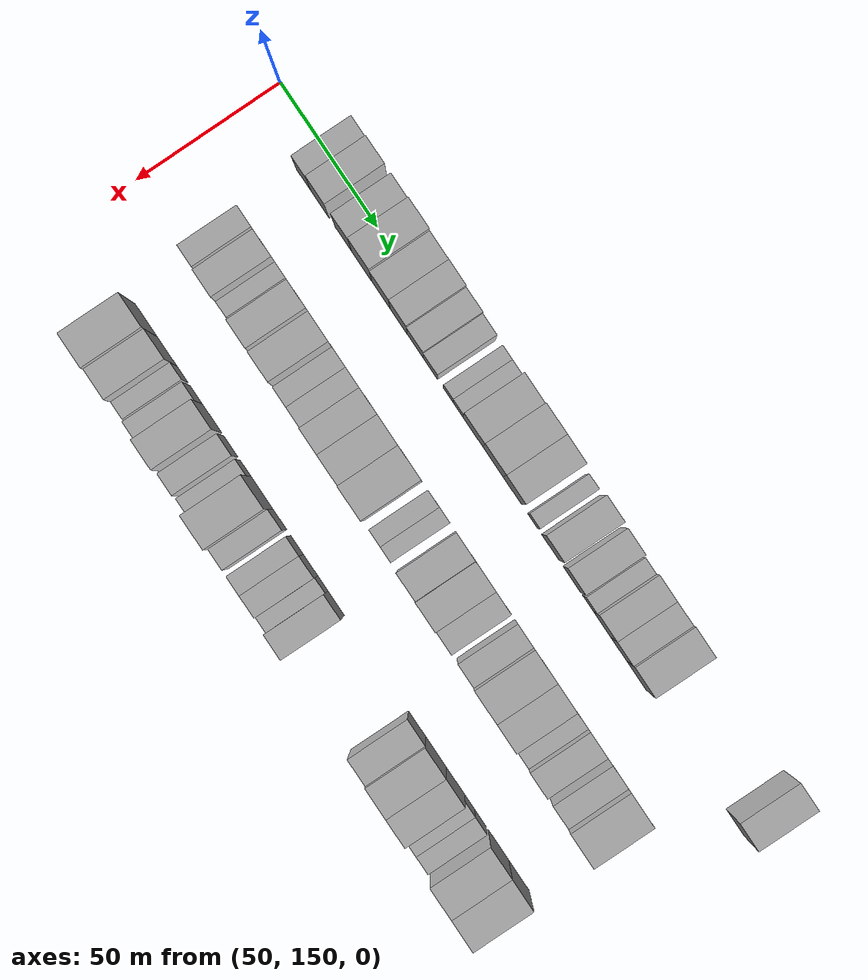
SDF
<sdf version="1.6">
 <world name="default">
  <model name="building_60">
   <static>1</static>
   <pose>50.0000 177.0228 0 0.000000 0.000000 0.000000</pose>
   <link name="link">
    <pose>0 0 9.00 0 0 0</pose>
    <collision name="collision"><geometry><box><size>20.0000 7.4910 18.0000</size></box></geometry></collision>
    <visual name="visual">
     <cast_shadows>0</cast_shadows>
     <geometry><box><size>20.0000 7.4910 18.0000</size></box></geometry>
     <material>
      <script>
       <uri>model://HANNAS_wall/materials/scripts</uri>
       <uri>model://HANNAS_wall/materials/textures</uri>
       <name>vrc/HANNAS_wall</name>
      </script>
     </material>
    </visual>
   </link>
  </model>
  <model name="building_61">
   <static>1</static>
   <pose>50.0000 185.4629 0 0.000000 0.000000 0.000000</pose>
   <link name="link">
    <pose>0 0 10.50 0 0 0</pose>
    <collision name="collision"><geometry><box><size>20.0000 9.3893 21.0000</size></box></geometry></collision>
    <visual name="visual">
     <cast_shadows>0</cast_shadows>
     <geometry><box><size>20.0000 9.3893 21.0000</size></box></geometry>
     <material>
      <script>
       <uri>model://HANNAS_wall/materials/scripts</uri>
       <uri>model://HANNAS_wall/materials/textures</uri>
       <name>vrc/HANNAS_wall</name>
      </script>
     </material>
    </visual>
   </link>
  </model>
  <model name="building_62">
   <static>1</static>
   <pose>50.0000 197.4901 0 0.000000 0.000000 0.000000</pose>
   <link name="link">
    <pose>0 0 10.50 0 0 0</pose>
    <collision name="collision"><geometry><box><size>20.0000 8.6652 21.0000</size></box></geometry></collision>
    <visual name="visual">
     <cast_shadows>0</cast_shadows>
     <geometry><box><size>20.0000 8.6652 21.0000</size></box></geometry>
     <material>
      <script>
       <uri>model://HANNAS_wall/materials/scripts</uri>
       <uri>model://HANNAS_wall/materials/textures</uri>
       <name>vrc/HANNAS_wall</name>
      </script>
     </material>
    </visual>
   </link>
  </model>
  <model name="building_63">
   <static>1</static>
   <pose>50.0000 207.0480 0 0.000000 0.000000 0.000000</pose>
   <link name="link">
    <pose>0 0 12.00 0 0 0</pose>
    <collision name="collision"><geometry><box><size>20.0000 10.4505 24.0000</size></box></geometry></collision>
    <visual name="visual">
     <cast_shadows>0</cast_shadows>
     <geometry><box><size>20.0000 10.4505 24.0000</size></box></geometry>
     <material>
      <script>
       <uri>model://HANNAS_wall/materials/scripts</uri>
       <uri>model://HANNAS_wall/materials/textures</uri>
       <name>vrc/HANNAS_wall</name>
      </script>
     </material>
    </visual>
   </link>
  </model>
  <model name="building_64">
   <static>1</static>
   <pose>50.0000 216.9907 0 0.000000 0.000000 0.000000</pose>
   <link name="link">
    <pose>0 0 10.50 0 0 0</pose>
    <collision name="collision"><geometry><box><size>20.0000 9.4348 21.0000</size></box></geometry></collision>
    <visual name="visual">
     <cast_shadows>0</cast_shadows>
     <geometry><box><size>20.0000 9.4348 21.0000</size></box></geometry>
     <material>
      <script>
       <uri>model://HANNAS_wall/materials/scripts</uri>
       <uri>model://HANNAS_wall/materials/textures</uri>
       <name>vrc/HANNAS_wall</name>
      </script>
     </material>
    </visual>
   </link>
  </model>
  <model name="building_65">
   <static>1</static>
   <pose>50.0000 226.0302 0 0.000000 0.000000 0.000000</pose>
   <link name="link">
    <pose>0 0 10.50 0 0 0</pose>
    <collision name="collision"><geometry><box><size>20.0000 8.6443 21.0000</size></box></geometry></collision>
    <visual name="visual">
     <cast_shadows>0</cast_shadows>
     <geometry><box><size>20.0000 8.6443 21.0000</size></box></geometry>
     <material>
      <script>
       <uri>model://HANNAS_wall/materials/scripts</uri>
       <uri>model://HANNAS_wall/materials/textures</uri>
       <name>vrc/HANNAS_wall</name>
      </script>
     </material>
    </visual>
   </link>
  </model>
  <model name="building_66">
   <static>1</static>
   <pose>50.0000 234.5093 0 0.000000 0.000000 0.000000</pose>
   <link name="link">
    <pose>0 0 9.00 0 0 0</pose>
    <collision name="collision"><geometry><box><size>20.0000 8.3138 18.0000</size></box></geometry></collision>
    <visual name="visual">
     <cast_shadows>0</cast_shadows>
     <geometry><box><size>20.0000 8.3138 18.0000</size></box></geometry>
     <material>
      <script>
       <uri>model://HANNAS_wall/materials/scripts</uri>
       <uri>model://HANNAS_wall/materials/textures</uri>
       <name>vrc/HANNAS_wall</name>
      </script>
     </material>
    </visual>
   </link>
  </model>
  <model name="building_67">
   <static>1</static>
   <pose>50.0000 242.2727 0 0.000000 0.000000 0.000000</pose>
   <link name="link">
    <pose>0 0 7.50 0 0 0</pose>
    <collision name="collision"><geometry><box><size>20.0000 7.2130 15.0000</size></box></geometry></collision>
    <visual name="visual">
     <cast_shadows>0</cast_shadows>
     <geometry><box><size>20.0000 7.2130 15.0000</size></box></geometry>
     <material>
      <script>
       <uri>model://HANNAS_wall/materials/scripts</uri>
       <uri>model://HANNAS_wall/materials/textures</uri>
       <name>vrc/HANNAS_wall</name>
      </script>
     </material>
    </visual>
   </link>
  </model>
  <model name="building_68">
   <static>1</static>
   <pose>50.0000 251.3098 0 0.000000 0.000000 0.000000</pose>
   <link name="link">
    <pose>0 0 6.00 0 0 0</pose>
    <collision name="collision"><geometry><box><size>20.0000 4.8612 12.0000</size></box></geometry></collision>
    <visual name="visual">
     <cast_shadows>0</cast_shadows>
     <geometry><box><size>20.0000 4.8612 12.0000</size></box></geometry>
     <material>
      <script>
       <uri>model://HANNAS_wall/materials/scripts</uri>
       <uri>model://HANNAS_wall/materials/textures</uri>
       <name>vrc/HANNAS_wall</name>
      </script>
     </material>
    </visual>
   </link>
  </model>
  <model name="building_69">
   <static>1</static>
   <pose>50.0000 256.3648 0 0.000000 0.000000 0.000000</pose>
   <link name="link">
    <pose>0 0 6.00 0 0 0</pose>
    <collision name="collision"><geometry><box><size>20.0000 5.2489 12.0000</size></box></geometry></collision>
    <visual name="visual">
     <cast_shadows>0</cast_shadows>
     <geometry><box><size>20.0000 5.2489 12.0000</size></box></geometry>
     <material>
      <script>
       <uri>model://HANNAS_wall/materials/scripts</uri>
       <uri>model://HANNAS_wall/materials/textures</uri>
       <name>vrc/HANNAS_wall</name>
      </script>
     </material>
    </visual>
   </link>
  </model>
  <model name="building_70">
   <static>1</static>
   <pose>50.0000 264.1068 0 0.000000 0.000000 0.000000</pose>
   <link name="link">
    <pose>0 0 10.50 0 0 0</pose>
    <collision name="collision"><geometry><box><size>20.0000 10.2352 21.0000</size></box></geometry></collision>
    <visual name="visual">
     <cast_shadows>0</cast_shadows>
     <geometry><box><size>20.0000 10.2352 21.0000</size></box></geometry>
     <material>
      <script>
       <uri>model://HANNAS_wall/materials/scripts</uri>
       <uri>model://HANNAS_wall/materials/textures</uri>
       <name>vrc/HANNAS_wall</name>
      </script>
     </material>
    </visual>
   </link>
  </model>
  <model name="building_71">
   <static>1</static>
   <pose>50.0000 274.4136 0 0.000000 0.000000 0.000000</pose>
   <link name="link">
    <pose>0 0 12.00 0 0 0</pose>
    <collision name="collision"><geometry><box><size>20.0000 10.3784 24.0000</size></box></geometry></collision>
    <visual name="visual">
     <cast_shadows>0</cast_shadows>
     <geometry><box><size>20.0000 10.3784 24.0000</size></box></geometry>
     <material>
      <script>
       <uri>model://HANNAS_wall/materials/scripts</uri>
       <uri>model://HANNAS_wall/materials/textures</uri>
       <name>vrc/HANNAS_wall</name>
      </script>
     </material>
    </visual>
   </link>
  </model>
  <model name="building_72">
   <static>1</static>
   <pose>50.0000 284.4165 0 0.000000 0.000000 0.000000</pose>
   <link name="link">
    <pose>0 0 12.00 0 0 0</pose>
    <collision name="collision"><geometry><box><size>20.0000 9.6273 24.0000</size></box></geometry></collision>
    <visual name="visual">
     <cast_shadows>0</cast_shadows>
     <geometry><box><size>20.0000 9.6273 24.0000</size></box></geometry>
     <material>
      <script>
       <uri>model://HANNAS_wall/materials/scripts</uri>
       <uri>model://HANNAS_wall/materials/textures</uri>
       <name>vrc/HANNAS_wall</name>
      </script>
     </material>
    </visual>
   </link>
  </model>
  <model name="building_73">
   <static>1</static>
   <pose>50.0000 294.8289 0 0.000000 0.000000 0.000000</pose>
   <link name="link">
    <pose>0 0 6.00 0 0 0</pose>
    <collision name="collision"><geometry><box><size>20.0000 5.1974 12.0000</size></box></geometry></collision>
    <visual name="visual">
     <cast_shadows>0</cast_shadows>
     <geometry><box><size>20.0000 5.1974 12.0000</size></box></geometry>
     <material>
      <script>
       <uri>model://HANNAS_wall/materials/scripts</uri>
       <uri>model://HANNAS_wall/materials/textures</uri>
       <name>vrc/HANNAS_wall</name>
      </script>
     </material>
    </visual>
   </link>
  </model>
  <model name="building_74">
   <static>1</static>
   <pose>50.0000 303.9438 0 0.000000 0.000000 0.000000</pose>
   <link name="link">
    <pose>0 0 10.50 0 0 0</pose>
    <collision name="collision"><geometry><box><size>20.0000 9.0324 21.0000</size></box></geometry></collision>
    <visual name="visual">
     <cast_shadows>0</cast_shadows>
     <geometry><box><size>20.0000 9.0324 21.0000</size></box></geometry>
     <material>
      <script>
       <uri>model://HANNAS_wall/materials/scripts</uri>
       <uri>model://HANNAS_wall/materials/textures</uri>
       <name>vrc/HANNAS_wall</name>
      </script>
     </material>
    </visual>
   </link>
  </model>
  <model name="building_75">
   <static>1</static>
   <pose>50.0000 314.9573 0 0.000000 0.000000 0.000000</pose>
   <link name="link">
    <pose>0 0 9.00 0 0 0</pose>
    <collision name="collision"><geometry><box><size>20.0000 8.9947 18.0000</size></box></geometry></collision>
    <visual name="visual">
     <cast_shadows>0</cast_shadows>
     <geometry><box><size>20.0000 8.9947 18.0000</size></box></geometry>
     <material>
      <script>
       <uri>model://HANNAS_wall/materials/scripts</uri>
       <uri>model://HANNAS_wall/materials/textures</uri>
       <name>vrc/HANNAS_wall</name>
      </script>
     </material>
    </visual>
   </link>
  </model>
  <model name="building_76">
   <static>1</static>
   <pose>50.0000 323.2532 0 0.000000 0.000000 0.000000</pose>
   <link name="link">
    <pose>0 0 6.00 0 0 0</pose>
    <collision name="collision"><geometry><box><size>20.0000 5.5971 12.0000</size></box></geometry></collision>
    <visual name="visual">
     <cast_shadows>0</cast_shadows>
     <geometry><box><size>20.0000 5.5971 12.0000</size></box></geometry>
     <material>
      <script>
       <uri>model://HANNAS_wall/materials/scripts</uri>
       <uri>model://HANNAS_wall/materials/textures</uri>
       <name>vrc/HANNAS_wall</name>
      </script>
     </material>
    </visual>
   </link>
  </model>
  <model name="building_77">
   <static>1</static>
   <pose>50.0000 330.4956 0 0.000000 0.000000 0.000000</pose>
   <link name="link">
    <pose>0 0 9.00 0 0 0</pose>
    <collision name="collision"><geometry><box><size>20.0000 8.8877 18.0000</size></box></geometry></collision>
    <visual name="visual">
     <cast_shadows>0</cast_shadows>
     <geometry><box><size>20.0000 8.8877 18.0000</size></box></geometry>
     <material>
      <script>
       <uri>model://HANNAS_wall/materials/scripts</uri>
       <uri>model://HANNAS_wall/materials/textures</uri>
       <name>vrc/HANNAS_wall</name>
      </script>
     </material>
    </visual>
   </link>
  </model>
  <model name="building_78">
   <static>1</static>
   <pose>50.0000 338.9713 0 0.000000 0.000000 0.000000</pose>
   <link name="link">
    <pose>0 0 9.00 0 0 0</pose>
    <collision name="collision"><geometry><box><size>20.0000 8.0638 18.0000</size></box></geometry></collision>
    <visual name="visual">
     <cast_shadows>0</cast_shadows>
     <geometry><box><size>20.0000 8.0638 18.0000</size></box></geometry>
     <material>
      <script>
       <uri>model://HANNAS_wall/materials/scripts</uri>
       <uri>model://HANNAS_wall/materials/textures</uri>
       <name>vrc/HANNAS_wall</name>
      </script>
     </material>
    </visual>
   </link>
  </model>
  <model name="building_79">
   <static>1</static>
   <pose>50.0000 348.1222 0 0.000000 0.000000 0.000000</pose>
   <link name="link">
    <pose>0 0 10.50 0 0 0</pose>
    <collision name="collision"><geometry><box><size>20.0000 10.2378 21.0000</size></box></geometry></collision>
    <visual name="visual">
     <cast_shadows>0</cast_shadows>
     <geometry><box><size>20.0000 10.2378 21.0000</size></box></geometry>
     <material>
      <script>
       <uri>model://HANNAS_wall/materials/scripts</uri>
       <uri>model://HANNAS_wall/materials/textures</uri>
       <name>vrc/HANNAS_wall</name>
      </script>
     </material>
    </visual>
   </link>
  </model>
  <model name="building_80">
   <static>1</static>
   <pose>50.0000 399.1965 0 0.000000 0.000000 0.000000</pose>
   <link name="link">
    <pose>0 0 10.50 0 0 0</pose>
    <collision name="collision"><geometry><box><size>20.0000 9.3036 21.0000</size></box></geometry></collision>
    <visual name="visual">
     <cast_shadows>0</cast_shadows>
     <geometry><box><size>20.0000 9.3036 21.0000</size></box></geometry>
     <material>
      <script>
       <uri>model://HANNAS_wall/materials/scripts</uri>
       <uri>model://HANNAS_wall/materials/textures</uri>
       <name>vrc/HANNAS_wall</name>
      </script>
     </material>
    </visual>
   </link>
  </model>
  <model name="building_148">
   <static>1</static>
   <pose>90.0000 179.1464 0 0.000000 0.000000 0.000000</pose>
   <link name="link">
    <pose>0 0 7.50 0 0 0</pose>
    <collision name="collision"><geometry><box><size>20.0000 7.2872 15.0000</size></box></geometry></collision>
    <visual name="visual">
     <cast_shadows>0</cast_shadows>
     <geometry><box><size>20.0000 7.2872 15.0000</size></box></geometry>
     <material>
      <script>
       <uri>model://HANNAS_wall/materials/scripts</uri>
       <uri>model://HANNAS_wall/materials/textures</uri>
       <name>vrc/HANNAS_wall</name>
      </script>
     </material>
    </visual>
   </link>
  </model>
  <model name="building_149">
   <static>1</static>
   <pose>90.0000 189.3669 0 0.000000 0.000000 0.000000</pose>
   <link name="link">
    <pose>0 0 10.50 0 0 0</pose>
    <collision name="collision"><geometry><box><size>20.0000 9.1538 21.0000</size></box></geometry></collision>
    <visual name="visual">
     <cast_shadows>0</cast_shadows>
     <geometry><box><size>20.0000 9.1538 21.0000</size></box></geometry>
     <material>
      <script>
       <uri>model://HANNAS_wall/materials/scripts</uri>
       <uri>model://HANNAS_wall/materials/textures</uri>
       <name>vrc/HANNAS_wall</name>
      </script>
     </material>
    </visual>
   </link>
  </model>
  <model name="building_150">
   <static>1</static>
   <pose>90.0000 196.6650 0 0.000000 0.000000 0.000000</pose>
   <link name="link">
    <pose>0 0 6.00 0 0 0</pose>
    <collision name="collision"><geometry><box><size>20.0000 5.4423 12.0000</size></box></geometry></collision>
    <visual name="visual">
     <cast_shadows>0</cast_shadows>
     <geometry><box><size>20.0000 5.4423 12.0000</size></box></geometry>
     <material>
      <script>
       <uri>model://HANNAS_wall/materials/scripts</uri>
       <uri>model://HANNAS_wall/materials/textures</uri>
       <name>vrc/HANNAS_wall</name>
      </script>
     </material>
    </visual>
   </link>
  </model>
  <model name="building_151">
   <static>1</static>
   <pose>90.0000 206.1345 0 0.000000 0.000000 0.000000</pose>
   <link name="link">
    <pose>0 0 10.50 0 0 0</pose>
    <collision name="collision"><geometry><box><size>20.0000 9.4968 21.0000</size></box></geometry></collision>
    <visual name="visual">
     <cast_shadows>0</cast_shadows>
     <geometry><box><size>20.0000 9.4968 21.0000</size></box></geometry>
     <material>
      <script>
       <uri>model://HANNAS_wall/materials/scripts</uri>
       <uri>model://HANNAS_wall/materials/textures</uri>
       <name>vrc/HANNAS_wall</name>
      </script>
     </material>
    </visual>
   </link>
  </model>
  <model name="building_152">
   <static>1</static>
   <pose>90.0000 216.9397 0 0.000000 0.000000 0.000000</pose>
   <link name="link">
    <pose>0 0 10.50 0 0 0</pose>
    <collision name="collision"><geometry><box><size>20.0000 10.1138 21.0000</size></box></geometry></collision>
    <visual name="visual">
     <cast_shadows>0</cast_shadows>
     <geometry><box><size>20.0000 10.1138 21.0000</size></box></geometry>
     <material>
      <script>
       <uri>model://HANNAS_wall/materials/scripts</uri>
       <uri>model://HANNAS_wall/materials/textures</uri>
       <name>vrc/HANNAS_wall</name>
      </script>
     </material>
    </visual>
   </link>
  </model>
  <model name="building_153">
   <static>1</static>
   <pose>90.0000 226.3879 0 0.000000 0.000000 0.000000</pose>
   <link name="link">
    <pose>0 0 7.50 0 0 0</pose>
    <collision name="collision"><geometry><box><size>20.0000 6.7826 15.0000</size></box></geometry></collision>
    <visual name="visual">
     <cast_shadows>0</cast_shadows>
     <geometry><box><size>20.0000 6.7826 15.0000</size></box></geometry>
     <material>
      <script>
       <uri>model://HANNAS_wall/materials/scripts</uri>
       <uri>model://HANNAS_wall/materials/textures</uri>
       <name>vrc/HANNAS_wall</name>
      </script>
     </material>
    </visual>
   </link>
  </model>
  <model name="building_154">
   <static>1</static>
   <pose>90.0000 233.4755 0 0.000000 0.000000 0.000000</pose>
   <link name="link">
    <pose>0 0 7.50 0 0 0</pose>
    <collision name="collision"><geometry><box><size>20.0000 7.3924 15.0000</size></box></geometry></collision>
    <visual name="visual">
     <cast_shadows>0</cast_shadows>
     <geometry><box><size>20.0000 7.3924 15.0000</size></box></geometry>
     <material>
      <script>
       <uri>model://HANNAS_wall/materials/scripts</uri>
       <uri>model://HANNAS_wall/materials/textures</uri>
       <name>vrc/HANNAS_wall</name>
      </script>
     </material>
    </visual>
   </link>
  </model>
  <model name="building_155">
   <static>1</static>
   <pose>90.0000 241.5697 0 0.000000 0.000000 0.000000</pose>
   <link name="link">
    <pose>0 0 10.50 0 0 0</pose>
    <collision name="collision"><geometry><box><size>20.0000 8.7960 21.0000</size></box></geometry></collision>
    <visual name="visual">
     <cast_shadows>0</cast_shadows>
     <geometry><box><size>20.0000 8.7960 21.0000</size></box></geometry>
     <material>
      <script>
       <uri>model://HANNAS_wall/materials/scripts</uri>
       <uri>model://HANNAS_wall/materials/textures</uri>
       <name>vrc/HANNAS_wall</name>
      </script>
     </material>
    </visual>
   </link>
  </model>
  <model name="building_156">
   <static>1</static>
   <pose>90.0000 251.1582 0 0.000000 0.000000 0.000000</pose>
   <link name="link">
    <pose>0 0 10.50 0 0 0</pose>
    <collision name="collision"><geometry><box><size>20.0000 10.3811 21.0000</size></box></geometry></collision>
    <visual name="visual">
     <cast_shadows>0</cast_shadows>
     <geometry><box><size>20.0000 10.3811 21.0000</size></box></geometry>
     <material>
      <script>
       <uri>model://HANNAS_wall/materials/scripts</uri>
       <uri>model://HANNAS_wall/materials/textures</uri>
       <name>vrc/HANNAS_wall</name>
      </script>
     </material>
    </visual>
   </link>
  </model>
  <model name="building_157">
   <static>1</static>
   <pose>90.0000 262.0914 0 0.000000 0.000000 0.000000</pose>
   <link name="link">
    <pose>0 0 12.00 0 0 0</pose>
    <collision name="collision"><geometry><box><size>20.0000 11.4852 24.0000</size></box></geometry></collision>
    <visual name="visual">
     <cast_shadows>0</cast_shadows>
     <geometry><box><size>20.0000 11.4852 24.0000</size></box></geometry>
     <material>
      <script>
       <uri>model://HANNAS_wall/materials/scripts</uri>
       <uri>model://HANNAS_wall/materials/textures</uri>
       <name>vrc/HANNAS_wall</name>
      </script>
     </material>
    </visual>
   </link>
  </model>
  <model name="building_158">
   <static>1</static>
   <pose>90.0000 273.7501 0 0.000000 0.000000 0.000000</pose>
   <link name="link">
    <pose>0 0 6.00 0 0 0</pose>
    <collision name="collision"><geometry><box><size>20.0000 5.8323 12.0000</size></box></geometry></collision>
    <visual name="visual">
     <cast_shadows>0</cast_shadows>
     <geometry><box><size>20.0000 5.8323 12.0000</size></box></geometry>
     <material>
      <script>
       <uri>model://HANNAS_wall/materials/scripts</uri>
       <uri>model://HANNAS_wall/materials/textures</uri>
       <name>vrc/HANNAS_wall</name>
      </script>
     </material>
    </visual>
   </link>
  </model>
  <model name="building_159">
   <static>1</static>
   <pose>90.0000 279.3207 0 0.000000 0.000000 0.000000</pose>
   <link name="link">
    <pose>0 0 6.00 0 0 0</pose>
    <collision name="collision"><geometry><box><size>20.0000 5.3089 12.0000</size></box></geometry></collision>
    <visual name="visual">
     <cast_shadows>0</cast_shadows>
     <geometry><box><size>20.0000 5.3089 12.0000</size></box></geometry>
     <material>
      <script>
       <uri>model://HANNAS_wall/materials/scripts</uri>
       <uri>model://HANNAS_wall/materials/textures</uri>
       <name>vrc/HANNAS_wall</name>
      </script>
     </material>
    </visual>
   </link>
  </model>
  <model name="building_160">
   <static>1</static>
   <pose>90.0000 289.7225 0 0.000000 0.000000 0.000000</pose>
   <link name="link">
    <pose>0 0 10.50 0 0 0</pose>
    <collision name="collision"><geometry><box><size>20.0000 9.4949 21.0000</size></box></geometry></collision>
    <visual name="visual">
     <cast_shadows>0</cast_shadows>
     <geometry><box><size>20.0000 9.4949 21.0000</size></box></geometry>
     <material>
      <script>
       <uri>model://HANNAS_wall/materials/scripts</uri>
       <uri>model://HANNAS_wall/materials/textures</uri>
       <name>vrc/HANNAS_wall</name>
      </script>
     </material>
    </visual>
   </link>
  </model>
  <model name="building_161">
   <static>1</static>
   <pose>90.0000 299.4579 0 0.000000 0.000000 0.000000</pose>
   <link name="link">
    <pose>0 0 12.00 0 0 0</pose>
    <collision name="collision"><geometry><box><size>20.0000 9.9759 24.0000</size></box></geometry></collision>
    <visual name="visual">
     <cast_shadows>0</cast_shadows>
     <geometry><box><size>20.0000 9.9759 24.0000</size></box></geometry>
     <material>
      <script>
       <uri>model://HANNAS_wall/materials/scripts</uri>
       <uri>model://HANNAS_wall/materials/textures</uri>
       <name>vrc/HANNAS_wall</name>
      </script>
     </material>
    </visual>
   </link>
  </model>
  <model name="building_162">
   <static>1</static>
   <pose>90.0000 308.4541 0 0.000000 0.000000 0.000000</pose>
   <link name="link">
    <pose>0 0 9.00 0 0 0</pose>
    <collision name="collision"><geometry><box><size>20.0000 8.0165 18.0000</size></box></geometry></collision>
    <visual name="visual">
     <cast_shadows>0</cast_shadows>
     <geometry><box><size>20.0000 8.0165 18.0000</size></box></geometry>
     <material>
      <script>
       <uri>model://HANNAS_wall/materials/scripts</uri>
       <uri>model://HANNAS_wall/materials/textures</uri>
       <name>vrc/HANNAS_wall</name>
      </script>
     </material>
    </visual>
   </link>
  </model>
  <model name="building_163">
   <static>1</static>
   <pose>90.0000 319.4515 0 0.000000 0.000000 0.000000</pose>
   <link name="link">
    <pose>0 0 9.00 0 0 0</pose>
    <collision name="collision"><geometry><box><size>20.0000 7.9783 18.0000</size></box></geometry></collision>
    <visual name="visual">
     <cast_shadows>0</cast_shadows>
     <geometry><box><size>20.0000 7.9783 18.0000</size></box></geometry>
     <material>
      <script>
       <uri>model://HANNAS_wall/materials/scripts</uri>
       <uri>model://HANNAS_wall/materials/textures</uri>
       <name>vrc/HANNAS_wall</name>
      </script>
     </material>
    </visual>
   </link>
  </model>
  <model name="building_164">
   <static>1</static>
   <pose>90.0000 329.0232 0 0.000000 0.000000 0.000000</pose>
   <link name="link">
    <pose>0 0 12.00 0 0 0</pose>
    <collision name="collision"><geometry><box><size>20.0000 11.1652 24.0000</size></box></geometry></collision>
    <visual name="visual">
     <cast_shadows>0</cast_shadows>
     <geometry><box><size>20.0000 11.1652 24.0000</size></box></geometry>
     <material>
      <script>
       <uri>model://HANNAS_wall/materials/scripts</uri>
       <uri>model://HANNAS_wall/materials/textures</uri>
       <name>vrc/HANNAS_wall</name>
      </script>
     </material>
    </visual>
   </link>
  </model>
  <model name="building_165">
   <static>1</static>
   <pose>90.0000 339.4173 0 0.000000 0.000000 0.000000</pose>
   <link name="link">
    <pose>0 0 12.00 0 0 0</pose>
    <collision name="collision"><geometry><box><size>20.0000 9.6230 24.0000</size></box></geometry></collision>
    <visual name="visual">
     <cast_shadows>0</cast_shadows>
     <geometry><box><size>20.0000 9.6230 24.0000</size></box></geometry>
     <material>
      <script>
       <uri>model://HANNAS_wall/materials/scripts</uri>
       <uri>model://HANNAS_wall/materials/textures</uri>
       <name>vrc/HANNAS_wall</name>
      </script>
     </material>
    </visual>
   </link>
  </model>
  <model name="building_166">
   <static>1</static>
   <pose>90.0000 347.5920 0 0.000000 0.000000 0.000000</pose>
   <link name="link">
    <pose>0 0 7.50 0 0 0</pose>
    <collision name="collision"><geometry><box><size>20.0000 6.7263 15.0000</size></box></geometry></collision>
    <visual name="visual">
     <cast_shadows>0</cast_shadows>
     <geometry><box><size>20.0000 6.7263 15.0000</size></box></geometry>
     <material>
      <script>
       <uri>model://HANNAS_wall/materials/scripts</uri>
       <uri>model://HANNAS_wall/materials/textures</uri>
       <name>vrc/HANNAS_wall</name>
      </script>
     </material>
    </visual>
   </link>
  </model>
  <model name="building_167">
   <static>1</static>
   <pose>90.0000 355.2826 0 0.000000 0.000000 0.000000</pose>
   <link name="link">
    <pose>0 0 10.50 0 0 0</pose>
    <collision name="collision"><geometry><box><size>20.0000 8.6548 21.0000</size></box></geometry></collision>
    <visual name="visual">
     <cast_shadows>0</cast_shadows>
     <geometry><box><size>20.0000 8.6548 21.0000</size></box></geometry>
     <material>
      <script>
       <uri>model://HANNAS_wall/materials/scripts</uri>
       <uri>model://HANNAS_wall/materials/textures</uri>
       <name>vrc/HANNAS_wall</name>
      </script>
     </material>
    </visual>
   </link>
  </model>
  <model name="building_168">
   <static>1</static>
   <pose>90.0000 366.4722 0 0.000000 0.000000 0.000000</pose>
   <link name="link">
    <pose>0 0 9.00 0 0 0</pose>
    <collision name="collision"><geometry><box><size>20.0000 7.7245 18.0000</size></box></geometry></collision>
    <visual name="visual">
     <cast_shadows>0</cast_shadows>
     <geometry><box><size>20.0000 7.7245 18.0000</size></box></geometry>
     <material>
      <script>
       <uri>model://HANNAS_wall/materials/scripts</uri>
       <uri>model://HANNAS_wall/materials/textures</uri>
       <name>vrc/HANNAS_wall</name>
      </script>
     </material>
    </visual>
   </link>
  </model>
  <model name="building_169">
   <static>1</static>
   <pose>90.0000 376.1131 0 0.000000 0.000000 0.000000</pose>
   <link name="link">
    <pose>0 0 12.00 0 0 0</pose>
    <collision name="collision"><geometry><box><size>20.0000 11.5573 24.0000</size></box></geometry></collision>
    <visual name="visual">
     <cast_shadows>0</cast_shadows>
     <geometry><box><size>20.0000 11.5573 24.0000</size></box></geometry>
     <material>
      <script>
       <uri>model://HANNAS_wall/materials/scripts</uri>
       <uri>model://HANNAS_wall/materials/textures</uri>
       <name>vrc/HANNAS_wall</name>
      </script>
     </material>
    </visual>
   </link>
  </model>
  <model name="building_232">
   <static>1</static>
   <pose>130.0000 185.0687 0 0.000000 0.000000 0.000000</pose>
   <link name="link">
    <pose>0 0 12.00 0 0 0</pose>
    <collision name="collision"><geometry><box><size>20.0000 11.4628 24.0000</size></box></geometry></collision>
    <visual name="visual">
     <cast_shadows>0</cast_shadows>
     <geometry><box><size>20.0000 11.4628 24.0000</size></box></geometry>
     <material>
      <script>
       <uri>model://HANNAS_wall/materials/scripts</uri>
       <uri>model://HANNAS_wall/materials/textures</uri>
       <name>vrc/HANNAS_wall</name>
      </script>
     </material>
    </visual>
   </link>
  </model>
  <model name="building_233">
   <static>1</static>
   <pose>130.0000 195.8545 0 0.000000 0.000000 0.000000</pose>
   <link name="link">
    <pose>0 0 10.50 0 0 0</pose>
    <collision name="collision"><geometry><box><size>20.0000 10.1087 21.0000</size></box></geometry></collision>
    <visual name="visual">
     <cast_shadows>0</cast_shadows>
     <geometry><box><size>20.0000 10.1087 21.0000</size></box></geometry>
     <material>
      <script>
       <uri>model://HANNAS_wall/materials/scripts</uri>
       <uri>model://HANNAS_wall/materials/textures</uri>
       <name>vrc/HANNAS_wall</name>
      </script>
     </material>
    </visual>
   </link>
  </model>
  <model name="building_234">
   <static>1</static>
   <pose>130.0000 203.8468 0 0.000000 0.000000 0.000000</pose>
   <link name="link">
    <pose>0 0 6.00 0 0 0</pose>
    <collision name="collision"><geometry><box><size>20.0000 5.8758 12.0000</size></box></geometry></collision>
    <visual name="visual">
     <cast_shadows>0</cast_shadows>
     <geometry><box><size>20.0000 5.8758 12.0000</size></box></geometry>
     <material>
      <script>
       <uri>model://HANNAS_wall/materials/scripts</uri>
       <uri>model://HANNAS_wall/materials/textures</uri>
       <name>vrc/HANNAS_wall</name>
      </script>
     </material>
    </visual>
   </link>
  </model>
  <model name="building_235">
   <static>1</static>
   <pose>130.0000 210.9361 0 0.000000 0.000000 0.000000</pose>
   <link name="link">
    <pose>0 0 7.50 0 0 0</pose>
    <collision name="collision"><geometry><box><size>20.0000 6.3029 15.0000</size></box></geometry></collision>
    <visual name="visual">
     <cast_shadows>0</cast_shadows>
     <geometry><box><size>20.0000 6.3029 15.0000</size></box></geometry>
     <material>
      <script>
       <uri>model://HANNAS_wall/materials/scripts</uri>
       <uri>model://HANNAS_wall/materials/textures</uri>
       <name>vrc/HANNAS_wall</name>
      </script>
     </material>
    </visual>
   </link>
  </model>
  <model name="building_236">
   <static>1</static>
   <pose>130.0000 219.0963 0 0.000000 0.000000 0.000000</pose>
   <link name="link">
    <pose>0 0 10.50 0 0 0</pose>
    <collision name="collision"><geometry><box><size>20.0000 10.0176 21.0000</size></box></geometry></collision>
    <visual name="visual">
     <cast_shadows>0</cast_shadows>
     <geometry><box><size>20.0000 10.0176 21.0000</size></box></geometry>
     <material>
      <script>
       <uri>model://HANNAS_wall/materials/scripts</uri>
       <uri>model://HANNAS_wall/materials/textures</uri>
       <name>vrc/HANNAS_wall</name>
      </script>
     </material>
    </visual>
   </link>
  </model>
  <model name="building_237">
   <static>1</static>
   <pose>130.0000 228.8251 0 0.000000 0.000000 0.000000</pose>
   <link name="link">
    <pose>0 0 7.50 0 0 0</pose>
    <collision name="collision"><geometry><box><size>20.0000 7.4400 15.0000</size></box></geometry></collision>
    <visual name="visual">
     <cast_shadows>0</cast_shadows>
     <geometry><box><size>20.0000 7.4400 15.0000</size></box></geometry>
     <material>
      <script>
       <uri>model://HANNAS_wall/materials/scripts</uri>
       <uri>model://HANNAS_wall/materials/textures</uri>
       <name>vrc/HANNAS_wall</name>
      </script>
     </material>
    </visual>
   </link>
  </model>
  <model name="building_238">
   <static>1</static>
   <pose>130.0000 236.3399 0 0.000000 0.000000 0.000000</pose>
   <link name="link">
    <pose>0 0 6.00 0 0 0</pose>
    <collision name="collision"><geometry><box><size>20.0000 5.5896 12.0000</size></box></geometry></collision>
    <visual name="visual">
     <cast_shadows>0</cast_shadows>
     <geometry><box><size>20.0000 5.5896 12.0000</size></box></geometry>
     <material>
      <script>
       <uri>model://HANNAS_wall/materials/scripts</uri>
       <uri>model://HANNAS_wall/materials/textures</uri>
       <name>vrc/HANNAS_wall</name>
      </script>
     </material>
    </visual>
   </link>
  </model>
  <model name="building_239">
   <static>1</static>
   <pose>130.0000 244.8044 0 0.000000 0.000000 0.000000</pose>
   <link name="link">
    <pose>0 0 12.00 0 0 0</pose>
    <collision name="collision"><geometry><box><size>20.0000 11.3393 24.0000</size></box></geometry></collision>
    <visual name="visual">
     <cast_shadows>0</cast_shadows>
     <geometry><box><size>20.0000 11.3393 24.0000</size></box></geometry>
     <material>
      <script>
       <uri>model://HANNAS_wall/materials/scripts</uri>
       <uri>model://HANNAS_wall/materials/textures</uri>
       <name>vrc/HANNAS_wall</name>
      </script>
     </material>
    </visual>
   </link>
  </model>
  <model name="building_240">
   <static>1</static>
   <pose>130.0000 254.0243 0 0.000000 0.000000 0.000000</pose>
   <link name="link">
    <pose>0 0 7.50 0 0 0</pose>
    <collision name="collision"><geometry><box><size>20.0000 7.1004 15.0000</size></box></geometry></collision>
    <visual name="visual">
     <cast_shadows>0</cast_shadows>
     <geometry><box><size>20.0000 7.1004 15.0000</size></box></geometry>
     <material>
      <script>
       <uri>model://HANNAS_wall/materials/scripts</uri>
       <uri>model://HANNAS_wall/materials/textures</uri>
       <name>vrc/HANNAS_wall</name>
      </script>
     </material>
    </visual>
   </link>
  </model>
  <model name="building_241">
   <static>1</static>
   <pose>130.0000 262.8496 0 0.000000 0.000000 0.000000</pose>
   <link name="link">
    <pose>0 0 7.50 0 0 0</pose>
    <collision name="collision"><geometry><box><size>20.0000 6.5503 15.0000</size></box></geometry></collision>
    <visual name="visual">
     <cast_shadows>0</cast_shadows>
     <geometry><box><size>20.0000 6.5503 15.0000</size></box></geometry>
     <material>
      <script>
       <uri>model://HANNAS_wall/materials/scripts</uri>
       <uri>model://HANNAS_wall/materials/textures</uri>
       <name>vrc/HANNAS_wall</name>
      </script>
     </material>
    </visual>
   </link>
  </model>
  <model name="building_242">
   <static>1</static>
   <pose>130.0000 269.8620 0 0.000000 0.000000 0.000000</pose>
   <link name="link">
    <pose>0 0 7.50 0 0 0</pose>
    <collision name="collision"><geometry><box><size>20.0000 7.4745 15.0000</size></box></geometry></collision>
    <visual name="visual">
     <cast_shadows>0</cast_shadows>
     <geometry><box><size>20.0000 7.4745 15.0000</size></box></geometry>
     <material>
      <script>
       <uri>model://HANNAS_wall/materials/scripts</uri>
       <uri>model://HANNAS_wall/materials/textures</uri>
       <name>vrc/HANNAS_wall</name>
      </script>
     </material>
    </visual>
   </link>
  </model>
  <model name="building_243">
   <static>1</static>
   <pose>130.0000 276.2009 0 0.000000 0.000000 0.000000</pose>
   <link name="link">
    <pose>0 0 6.00 0 0 0</pose>
    <collision name="collision"><geometry><box><size>20.0000 5.2033 12.0000</size></box></geometry></collision>
    <visual name="visual">
     <cast_shadows>0</cast_shadows>
     <geometry><box><size>20.0000 5.2033 12.0000</size></box></geometry>
     <material>
      <script>
       <uri>model://HANNAS_wall/materials/scripts</uri>
       <uri>model://HANNAS_wall/materials/textures</uri>
       <name>vrc/HANNAS_wall</name>
      </script>
     </material>
    </visual>
   </link>
  </model>
  <model name="building_244">
   <static>1</static>
   <pose>130.0000 283.0696 0 0.000000 0.000000 0.000000</pose>
   <link name="link">
    <pose>0 0 9.00 0 0 0</pose>
    <collision name="collision"><geometry><box><size>20.0000 8.5340 18.0000</size></box></geometry></collision>
    <visual name="visual">
     <cast_shadows>0</cast_shadows>
     <geometry><box><size>20.0000 8.5340 18.0000</size></box></geometry>
     <material>
      <script>
       <uri>model://HANNAS_wall/materials/scripts</uri>
       <uri>model://HANNAS_wall/materials/textures</uri>
       <name>vrc/HANNAS_wall</name>
      </script>
     </material>
    </visual>
   </link>
  </model>
  <model name="building_245">
   <static>1</static>
   <pose>130.0000 324.7441 0 0.000000 0.000000 0.000000</pose>
   <link name="link">
    <pose>0 0 9.00 0 0 0</pose>
    <collision name="collision"><geometry><box><size>20.0000 8.9384 18.0000</size></box></geometry></collision>
    <visual name="visual">
     <cast_shadows>0</cast_shadows>
     <geometry><box><size>20.0000 8.9384 18.0000</size></box></geometry>
     <material>
      <script>
       <uri>model://HANNAS_wall/materials/scripts</uri>
       <uri>model://HANNAS_wall/materials/textures</uri>
       <name>vrc/HANNAS_wall</name>
      </script>
     </material>
    </visual>
   </link>
  </model>
  <model name="building_246">
   <static>1</static>
   <pose>130.0000 334.4205 0 0.000000 0.000000 0.000000</pose>
   <link name="link">
    <pose>0 0 10.50 0 0 0</pose>
    <collision name="collision"><geometry><box><size>20.0000 10.4144 21.0000</size></box></geometry></collision>
    <visual name="visual">
     <cast_shadows>0</cast_shadows>
     <geometry><box><size>20.0000 10.4144 21.0000</size></box></geometry>
     <material>
      <script>
       <uri>model://HANNAS_wall/materials/scripts</uri>
       <uri>model://HANNAS_wall/materials/textures</uri>
       <name>vrc/HANNAS_wall</name>
      </script>
     </material>
    </visual>
   </link>
  </model>
  <model name="building_247">
   <static>1</static>
   <pose>130.0000 344.3455 0 0.000000 0.000000 0.000000</pose>
   <link name="link">
    <pose>0 0 10.50 0 0 0</pose>
    <collision name="collision"><geometry><box><size>20.0000 9.4355 21.0000</size></box></geometry></collision>
    <visual name="visual">
     <cast_shadows>0</cast_shadows>
     <geometry><box><size>20.0000 9.4355 21.0000</size></box></geometry>
     <material>
      <script>
       <uri>model://HANNAS_wall/materials/scripts</uri>
       <uri>model://HANNAS_wall/materials/textures</uri>
       <name>vrc/HANNAS_wall</name>
      </script>
     </material>
    </visual>
   </link>
  </model>
  <model name="building_248">
   <static>1</static>
   <pose>130.0000 351.6850 0 0.000000 0.000000 0.000000</pose>
   <link name="link">
    <pose>0 0 6.00 0 0 0</pose>
    <collision name="collision"><geometry><box><size>20.0000 5.2435 12.0000</size></box></geometry></collision>
    <visual name="visual">
     <cast_shadows>0</cast_shadows>
     <geometry><box><size>20.0000 5.2435 12.0000</size></box></geometry>
     <material>
      <script>
       <uri>model://HANNAS_wall/materials/scripts</uri>
       <uri>model://HANNAS_wall/materials/textures</uri>
       <name>vrc/HANNAS_wall</name>
      </script>
     </material>
    </visual>
   </link>
  </model>
  <model name="building_249">
   <static>1</static>
   <pose>130.0000 357.2767 0 0.000000 0.000000 0.000000</pose>
   <link name="link">
    <pose>0 0 6.00 0 0 0</pose>
    <collision name="collision"><geometry><box><size>20.0000 5.9401 12.0000</size></box></geometry></collision>
    <visual name="visual">
     <cast_shadows>0</cast_shadows>
     <geometry><box><size>20.0000 5.9401 12.0000</size></box></geometry>
     <material>
      <script>
       <uri>model://HANNAS_wall/materials/scripts</uri>
       <uri>model://HANNAS_wall/materials/textures</uri>
       <name>vrc/HANNAS_wall</name>
      </script>
     </material>
    </visual>
   </link>
  </model>
  <model name="building_250">
   <static>1</static>
   <pose>130.0000 366.5742 0 0.000000 0.000000 0.000000</pose>
   <link name="link">
    <pose>0 0 12.00 0 0 0</pose>
    <collision name="collision"><geometry><box><size>20.0000 10.6549 24.0000</size></box></geometry></collision>
    <visual name="visual">
     <cast_shadows>0</cast_shadows>
     <geometry><box><size>20.0000 10.6549 24.0000</size></box></geometry>
     <material>
      <script>
       <uri>model://HANNAS_wall/materials/scripts</uri>
       <uri>model://HANNAS_wall/materials/textures</uri>
       <name>vrc/HANNAS_wall</name>
      </script>
     </material>
    </visual>
   </link>
  </model>
  <model name="building_251">
   <static>1</static>
   <pose>130.0000 377.1625 0 0.000000 0.000000 0.000000</pose>
   <link name="link">
    <pose>0 0 12.00 0 0 0</pose>
    <collision name="collision"><geometry><box><size>20.0000 10.5216 24.0000</size></box></geometry></collision>
    <visual name="visual">
     <cast_shadows>0</cast_shadows>
     <geometry><box><size>20.0000 10.5216 24.0000</size></box></geometry>
     <material>
      <script>
       <uri>model://HANNAS_wall/materials/scripts</uri>
       <uri>model://HANNAS_wall/materials/textures</uri>
       <name>vrc/HANNAS_wall</name>
      </script>
     </material>
    </visual>
   </link>
  </model>
 </world>
</sdf>
